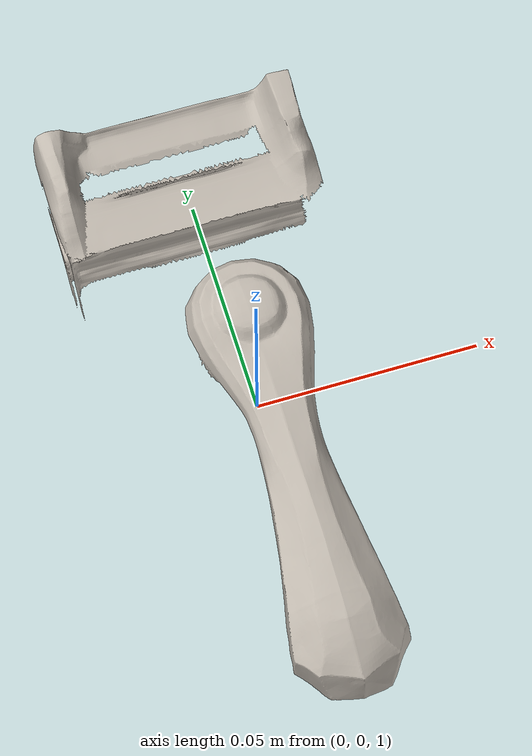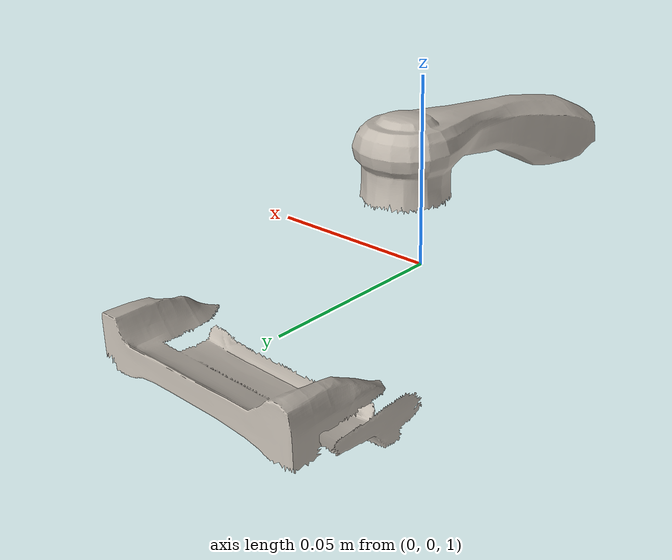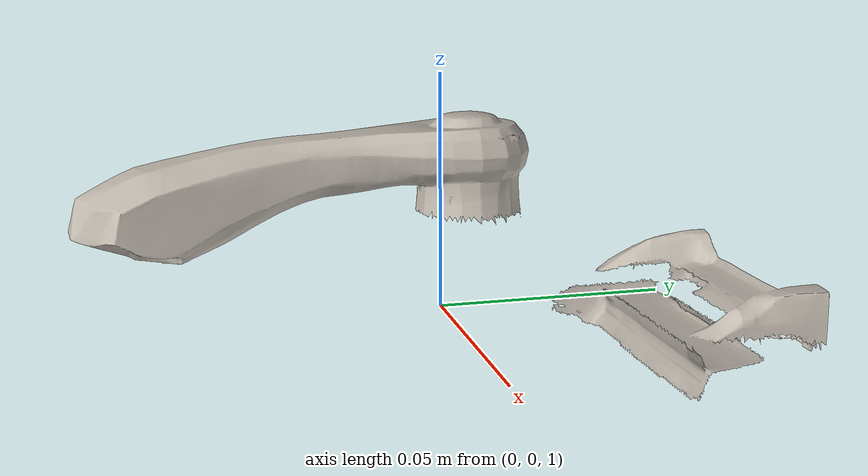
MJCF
<?xml version='1.0' encoding='utf-8'?>
<mujoco model="test">
    <compiler angle="radian" autolimits="true" />
    <option timestep="0.002" gravity="0 0 -9.81" wind="0 0 0" integrator="implicitfast" density="1.225" viscosity="1.8e-05" />
    <visual>
        <global realtime="1" />
        <quality shadowsize="16384" numslices="28" offsamples="4" />
        <headlight diffuse="2 2 2" specular="0.5 0.5 0.5" active="1" />
        <rgba fog="0 1 0 1" haze="1 0 0 1" />
    </visual>
    <asset>
        <mesh name="l_0_Switch" file="./objs/0/0.obj" scale="0.15 0.15 0.15" />
        <texture type="2d" name="l_0_Switch_tex" file="./objs/0/material_0.png" />
        <material name="l_0_Switch_img" texture="l_0_Switch_tex" />
        <mesh name="l_1_Frame" file="./objs/1/1.obj" scale="0.15 0.15 0.15" />
        <texture type="2d" name="l_1_Frame_tex" file="./objs/1/material_0.png" />
        <material name="l_1_Frame_img" texture="l_1_Frame_tex" />
        <texture type="skybox" file="./desert.png" gridsize="3 4" gridlayout=".U..LFRB.D.." />
        <texture name="plane" type="2d" builtin="checker" rgb1=".1 .1 .1" rgb2=".5 .5 .5" width="512" height="512" mark="cross" markrgb=".8 .8 .8" />
        <material name="plane" reflectance="0.3" texture="plane" texrepeat="1 1" texuniform="true" />
    </asset>
    <default>
        <geom solref=".5e-4" solimp="0.9 0.99 1e-4" fluidcoef="0.5 0.25 0.5 2.0 1.0" />
        <default class="l_0_Switch">
            <geom type="mesh" mesh="l_0_Switch" contype="1" conaffinity="1" density="8000.0" fluidshape="ellipsoid" />
        </default>
        <default class="l_1_Frame">
            <geom type="mesh" mesh="l_1_Frame" contype="1" conaffinity="1" density="8500.0" fluidshape="ellipsoid" />
        </default>
    </default>
    <worldbody>
        <geom name="floor" pos="0 0 0" size="0 0 .25" type="plane" material="plane" condim="6" />
        <light directional="true" ambient=".3 .3 .3" pos="30 30 30" dir="0 -2 -1" diffuse=".5 .5 .5" specular=".5 .5 .5" />
        <body name="base" pos="0 0 1" euler="0 0 0">
            <freejoint />
            <geom class="l_1_Frame" material="l_1_Frame_img" />
            <body name="grouppart_1" pos="0 0 0">
                <joint type="hinge" name="pivot_1" axis="0.0 0.0 1.0" pos="0.00023437500000000333 0.0059531249999999975 -0.075" range="0.0 0.9948376736367678" damping="0.001" frictionloss="0.0" stiffness="0" />
                <geom class="l_0_Switch" material="l_0_Switch_img" />
            </body>
        </body>
    </worldbody>
</mujoco>
